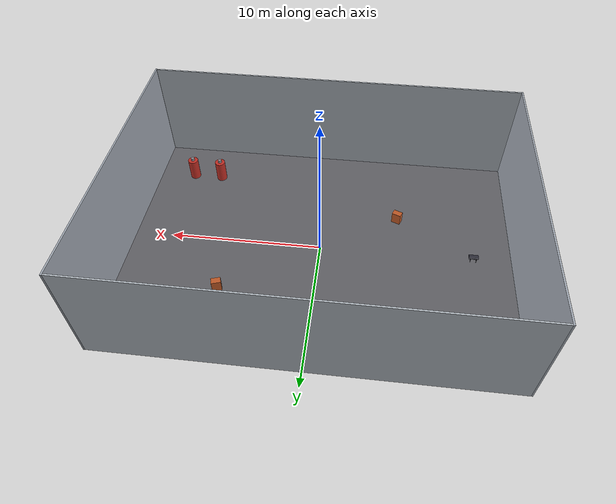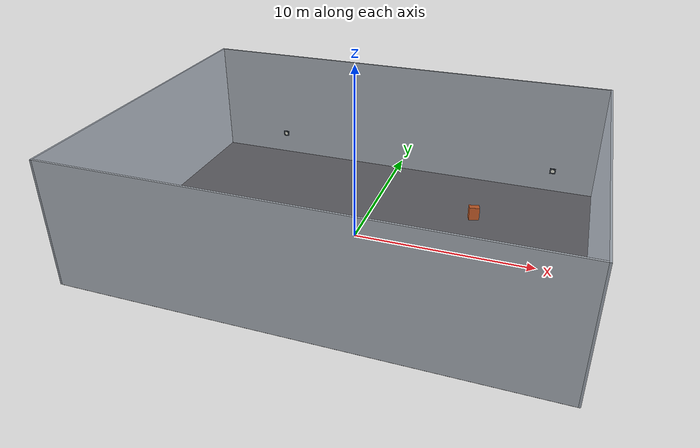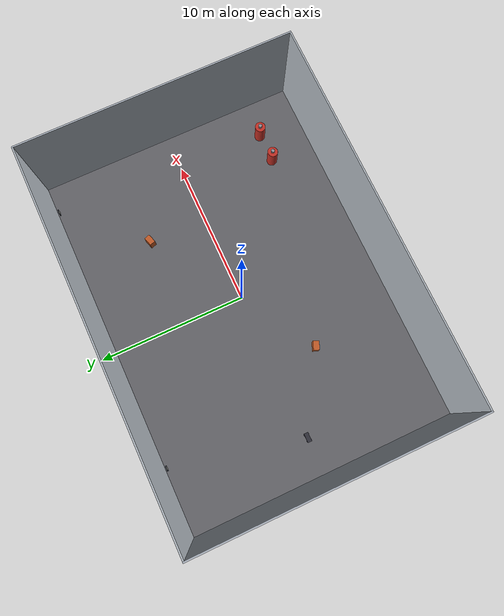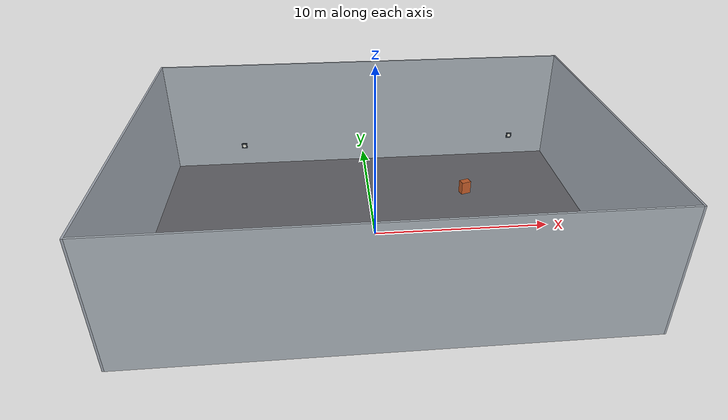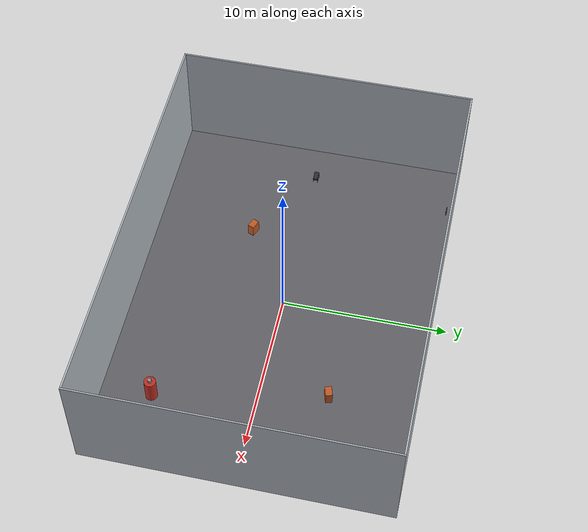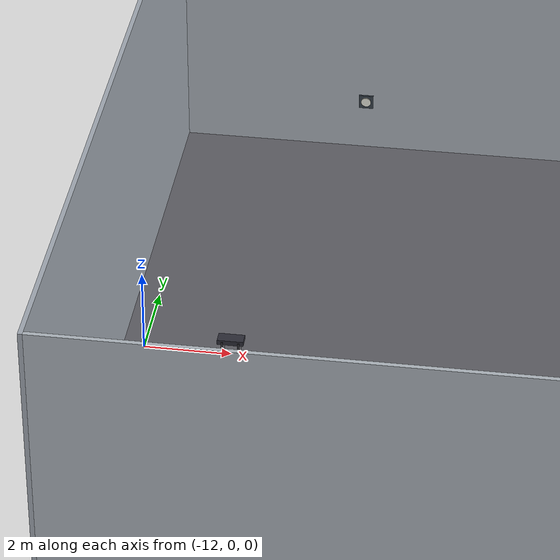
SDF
<?xml version="1.0"?>
<sdf version="1.10">
  <!-- 공장 Virtual Plant: 25 × 18 × 7 m -->
  <world name="factory">
    <physics name="1ms" type="ignored">
      <max_step_size>0.001</max_step_size>
      <real_time_factor>1.0</real_time_factor>
    </physics>
    <plugin filename="gz-sim-physics-system" name="gz::sim::systems::Physics"/>
    <plugin filename="gz-sim-user-commands-system" name="gz::sim::systems::UserCommands"/>
    <plugin filename="gz-sim-scene-broadcaster-system" name="gz::sim::systems::SceneBroadcaster"/>
    <plugin filename="gz-sim-sensors-system" name="gz::sim::systems::Sensors">
      <render_engine>ogre2</render_engine>
    </plugin>
    <plugin filename="gz-sim-imu-system" name="gz::sim::systems::Imu"/>

    <light name="sun" type="directional">
      <cast_shadows>true</cast_shadows>
      <pose>0 0 12 0 0 0</pose>
      <diffuse>0.85 0.85 0.8 1</diffuse>
      <specular>0.2 0.2 0.2 1</specular>
      <direction>-0.4 0.2 -0.9</direction>
    </light>
    <atmosphere type="adiabatic"/>
    <gravity>0 0 -9.8</gravity>

    <model name="floor">
      <static>true</static>
      <pose>0 0 -0.05 0 0 0</pose>
      <link name="link">
        <collision name="collision">
          <geometry><box><size>25 18 0.1</size></box></geometry>
        </collision>
        <visual name="visual">
          <geometry><box><size>25 18 0.1</size></box></geometry>
          <material>
            <ambient>0.28 0.28 0.3 1</ambient>
            <diffuse>0.38 0.38 0.4 1</diffuse>
          </material>
        </visual>
      </link>
    </model>

    <model name="wall_north">
      <static>true</static>
      <pose>0 9.05 3.5 0 0 0</pose>
      <link name="link">
        <collision name="collision">
          <geometry><box><size>25 0.1 7</size></box></geometry>
        </collision>
        <visual name="visual">
          <geometry><box><size>25 0.1 7</size></box></geometry>
          <material>
            <ambient>0.55 0.58 0.62 1</ambient>
            <diffuse>0.7 0.73 0.76 1</diffuse>
          </material>
        </visual>
      </link>
    </model>
    <model name="wall_south">
      <static>true</static>
      <pose>0 -9.05 3.5 0 0 0</pose>
      <link name="link">
        <collision name="collision">
          <geometry><box><size>25 0.1 7</size></box></geometry>
        </collision>
        <visual name="visual">
          <geometry><box><size>25 0.1 7</size></box></geometry>
          <material>
            <ambient>0.55 0.58 0.62 1</ambient>
            <diffuse>0.7 0.73 0.76 1</diffuse>
          </material>
        </visual>
      </link>
    </model>
    <model name="wall_west">
      <static>true</static>
      <pose>-12.55 0 3.5 0 0 0</pose>
      <link name="link">
        <collision name="collision">
          <geometry><box><size>0.1 18.2 7</size></box></geometry>
        </collision>
        <visual name="visual">
          <geometry><box><size>0.1 18.2 7</size></box></geometry>
          <material>
            <ambient>0.5 0.53 0.58 1</ambient>
            <diffuse>0.65 0.68 0.72 1</diffuse>
          </material>
        </visual>
      </link>
    </model>
    <model name="wall_east">
      <static>true</static>
      <pose>12.55 0 3.5 0 0 0</pose>
      <link name="link">
        <collision name="collision">
          <geometry><box><size>0.1 18.2 7</size></box></geometry>
        </collision>
        <visual name="visual">
          <geometry><box><size>0.1 18.2 7</size></box></geometry>
          <material>
            <ambient>0.5 0.53 0.58 1</ambient>
            <diffuse>0.65 0.68 0.72 1</diffuse>
          </material>
        </visual>
      </link>
    </model>

    <include>
      <uri>model://obstacle</uri>
      <name>rack_a</name>
      <pose>6 4 0.4 0 0 0.3</pose>
    </include>
    <include>
      <uri>model://obstacle</uri>
      <name>rack_b</name>
      <pose>-5 -3 0.4 0 0 -0.4</pose>
    </include>
    <include>
      <uri>model://gauge</uri>
      <name>gauge_line1</name>
      <pose>10 8.7 1.5 0 0 -1.5708</pose>
    </include>
    <include>
      <uri>model://gauge</uri>
      <name>gauge_line2</name>
      <pose>-8 8.7 1.5 0 0 -1.5708</pose>
    </include>
    <include>
      <uri>model://gas_tank</uri>
      <name>gas_tank_1</name>
      <pose>8 -6 0.75 0 0 0</pose>
    </include>
    <include>
      <uri>model://gas_tank</uri>
      <name>gas_tank_2</name>
      <pose>10 -6 0.75 0 0 0</pose>
    </include>

    <include>
      <uri>model://go2</uri>
      <name>go2</name>
      <pose>-10 0 0.4 0 0 0</pose>
    </include>
  </world>
</sdf>

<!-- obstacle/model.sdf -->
<sdf version="1.10">
  <model name="obstacle">
    <static>true</static>
    <link name="link">
      <collision name="collision">
        <geometry><box><size>0.6 0.4 0.8</size></box></geometry>
      </collision>
      <visual name="visual">
        <geometry><box><size>0.6 0.4 0.8</size></box></geometry>
        <material>
          <ambient>0.55 0.25 0.12 1</ambient>
          <diffuse>0.75 0.35 0.15 1</diffuse>
        </material>
      </visual>
    </link>
  </model>
</sdf>

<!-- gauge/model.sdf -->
<sdf version="1.10">
  <model name="gauge">
    <static>true</static>
    <link name="panel">
      <collision name="collision">
        <geometry><box><size>0.04 0.35 0.35</size></box></geometry>
      </collision>
      <visual name="visual">
        <geometry><box><size>0.04 0.35 0.35</size></box></geometry>
        <material>
          <ambient>0.15 0.18 0.2 1</ambient>
          <diffuse>0.22 0.26 0.3 1</diffuse>
        </material>
      </visual>
    </link>
    <link name="dial">
      <pose>0.03 0 0 0 1.5708 0</pose>
      <visual name="visual">
        <geometry><cylinder><radius>0.12</radius><length>0.02</length></cylinder></geometry>
        <material>
          <ambient>0.85 0.85 0.8 1</ambient>
          <diffuse>0.95 0.95 0.9 1</diffuse>
        </material>
      </visual>
    </link>
  </model>
</sdf>

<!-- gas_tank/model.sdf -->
<sdf version="1.10">
  <model name="gas_tank">
    <static>true</static>
    <link name="tank">
      <collision name="collision">
        <geometry><cylinder><radius>0.35</radius><length>1.5</length></cylinder></geometry>
      </collision>
      <visual name="visual">
        <geometry><cylinder><radius>0.35</radius><length>1.5</length></cylinder></geometry>
        <material>
          <ambient>0.55 0.12 0.1 1</ambient>
          <diffuse>0.75 0.18 0.14 1</diffuse>
        </material>
      </visual>
    </link>
    <link name="cap">
      <pose>0 0 0.85 0 0 0</pose>
      <visual name="visual">
        <geometry><cylinder><radius>0.12</radius><length>0.2</length></cylinder></geometry>
        <material>
          <ambient>0.4 0.4 0.42 1</ambient>
          <diffuse>0.55 0.55 0.58 1</diffuse>
        </material>
      </visual>
    </link>
  </model>
</sdf>

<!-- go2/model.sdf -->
<sdf version="1.10">
  <model name="go2">
    <pose>0 0 0.4 0 0 0</pose>
    <self_collide>false</self_collide>

    <link name="base_link">
      <inertial>
        <mass>6.0</mass>
        <inertia>
          <ixx>0.07</ixx><iyy>0.12</iyy><izz>0.15</izz>
          <ixy>0</ixy><ixz>0</ixz><iyz>0</iyz>
        </inertia>
      </inertial>
      <collision name="collision">
        <geometry><box><size>0.60 0.28 0.12</size></box></geometry>
      </collision>
      <visual name="visual">
        <geometry><box><size>0.60 0.28 0.12</size></box></geometry>
        <material>
          <ambient>0.12 0.12 0.14 1</ambient>
          <diffuse>0.18 0.18 0.22 1</diffuse>
        </material>
      </visual>
      <sensor name="imu_sensor" type="imu">
        <always_on>true</always_on>
        <update_rate>200</update_rate>
        <imu>
          <angular_velocity>
            <x><noise type="gaussian"><mean>0</mean><stddev>0.001</stddev></noise></x>
            <y><noise type="gaussian"><mean>0</mean><stddev>0.001</stddev></noise></y>
            <z><noise type="gaussian"><mean>0</mean><stddev>0.001</stddev></noise></z>
          </angular_velocity>
        </imu>
        <topic>imu</topic>
      </sensor>
      <sensor name="gpu_lidar" type="gpu_lidar">
        <pose>0.15 0 0.08 0 0 0</pose>
        <always_on>true</always_on>
        <update_rate>10</update_rate>
        <topic>lidar</topic>
        <lidar>
          <scan>
            <horizontal>
              <samples>360</samples>
              <resolution>1</resolution>
              <min_angle>-3.14159</min_angle>
              <max_angle>3.14159</max_angle>
            </horizontal>
            <vertical>
              <samples>16</samples>
              <resolution>1</resolution>
              <min_angle>-0.26</min_angle>
              <max_angle>0.26</max_angle>
            </vertical>
          </scan>
          <range>
            <min>0.1</min>
            <max>30</max>
            <resolution>0.01</resolution>
          </range>
        </lidar>
      </sensor>
      <sensor name="camera" type="camera">
        <pose>0.28 0 0.05 0 0 0</pose>
        <always_on>true</always_on>
        <update_rate>15</update_rate>
        <topic>camera</topic>
        <camera>
          <horizontal_fov>1.396</horizontal_fov>
          <image>
            <width>640</width>
            <height>480</height>
          </image>
          <clip>
            <near>0.05</near>
            <far>20</far>
          </clip>
        </camera>
      </sensor>
      <sensor name="thermal" type="camera">
        <pose>0.28 0 0.02 0 0 0</pose>
        <always_on>true</always_on>
        <update_rate>10</update_rate>
        <topic>thermal</topic>
        <camera>
          <horizontal_fov>1.0</horizontal_fov>
          <image>
            <width>320</width>
            <height>240</height>
            <format>L8</format>
          </image>
          <clip>
            <near>0.05</near>
            <far>15</far>
          </clip>
        </camera>
      </sensor>
    </link>

    <!-- 다리 4개 × hip / thigh / calf (시각·충돌만, 제어는 모듈1에서) -->
    <link name="FL_hip"><pose>0.19 0.10 0 0 0 0</pose>
      <inertial><mass>0.6</mass><inertia><ixx>0.001</ixx><iyy>0.001</iyy><izz>0.001</izz><ixy>0</ixy><ixz>0</ixz><iyz>0</iyz></inertia></inertial>
      <visual name="v"><geometry><box><size>0.06 0.06 0.06</size></box></geometry>
        <material><diffuse>0.9 0.55 0.1 1</diffuse></material></visual>
    </link>
    <link name="FL_thigh"><pose>0.19 0.14 -0.08 0 0 0</pose>
      <inertial><mass>1.0</mass><inertia><ixx>0.004</ixx><iyy>0.004</iyy><izz>0.001</izz><ixy>0</ixy><ixz>0</ixz><iyz>0</iyz></inertia></inertial>
      <collision name="c"><geometry><box><size>0.04 0.04 0.20</size></box></geometry></collision>
      <visual name="v"><geometry><box><size>0.04 0.04 0.20</size></box></geometry>
        <material><diffuse>0.2 0.2 0.22 1</diffuse></material></visual>
    </link>
    <link name="FL_calf"><pose>0.19 0.14 -0.26 0 0 0</pose>
      <inertial><mass>0.2</mass><inertia><ixx>0.003</ixx><iyy>0.003</iyy><izz>0.0004</izz><ixy>0</ixy><ixz>0</ixz><iyz>0</iyz></inertia></inertial>
      <collision name="c"><geometry><box><size>0.03 0.03 0.20</size></box></geometry></collision>
      <visual name="v"><geometry><box><size>0.03 0.03 0.20</size></box></geometry>
        <material><diffuse>0.75 0.75 0.78 1</diffuse></material></visual>
    </link>

    <link name="FR_hip"><pose>0.19 -0.10 0 0 0 0</pose>
      <inertial><mass>0.6</mass><inertia><ixx>0.001</ixx><iyy>0.001</iyy><izz>0.001</izz><ixy>0</ixy><ixz>0</ixz><iyz>0</iyz></inertia></inertial>
      <visual name="v"><geometry><box><size>0.06 0.06 0.06</size></box></geometry>
        <material><diffuse>0.9 0.55 0.1 1</diffuse></material></visual>
    </link>
    <link name="FR_thigh"><pose>0.19 -0.14 -0.08 0 0 0</pose>
      <inertial><mass>1.0</mass><inertia><ixx>0.004</ixx><iyy>0.004</iyy><izz>0.001</izz><ixy>0</ixy><ixz>0</ixz><iyz>0</iyz></inertia></inertial>
      <collision name="c"><geometry><box><size>0.04 0.04 0.20</size></box></geometry></collision>
      <visual name="v"><geometry><box><size>0.04 0.04 0.20</size></box></geometry>
        <material><diffuse>0.2 0.2 0.22 1</diffuse></material></visual>
    </link>
    <link name="FR_calf"><pose>0.19 -0.14 -0.26 0 0 0</pose>
      <inertial><mass>0.2</mass><inertia><ixx>0.003</ixx><iyy>0.003</iyy><izz>0.0004</izz><ixy>0</ixy><ixz>0</ixz><iyz>0</iyz></inertia></inertial>
      <collision name="c"><geometry><box><size>0.03 0.03 0.20</size></box></geometry></collision>
      <visual name="v"><geometry><box><size>0.03 0.03 0.20</size></box></geometry>
        <material><diffuse>0.75 0.75 0.78 1</diffuse></material></visual>
    </link>

    <link name="RL_hip"><pose>-0.19 0.10 0 0 0 0</pose>
      <inertial><mass>0.6</mass><inertia><ixx>0.001</ixx><iyy>0.001</iyy><izz>0.001</izz><ixy>0</ixy><ixz>0</ixz><iyz>0</iyz></inertia></inertial>
      <visual name="v"><geometry><box><size>0.06 0.06 0.06</size></box></geometry>
        <material><diffuse>0.9 0.55 0.1 1</diffuse></material></visual>
    </link>
    <link name="RL_thigh"><pose>-0.19 0.14 -0.08 0 0 0</pose>
      <inertial><mass>1.0</mass><inertia><ixx>0.004</ixx><iyy>0.004</iyy><izz>0.001</izz><ixy>0</ixy><ixz>0</ixz><iyz>0</iyz></inertia></inertial>
      <collision name="c"><geometry><box><size>0.04 0.04 0.20</size></box></geometry></collision>
      <visual name="v"><geometry><box><size>0.04 0.04 0.20</size></box></geometry>
        <material><diffuse>0.2 0.2 0.22 1</diffuse></material></visual>
    </link>
    <link name="RL_calf"><pose>-0.19 0.14 -0.26 0 0 0</pose>
      <inertial><mass>0.2</mass><inertia><ixx>0.003</ixx><iyy>0.003</iyy><izz>0.0004</izz><ixy>0</ixy><ixz>0</ixz><iyz>0</iyz></inertia></inertial>
      <collision name="c"><geometry><box><size>0.03 0.03 0.20</size></box></geometry></collision>
      <visual name="v"><geometry><box><size>0.03 0.03 0.20</size></box></geometry>
        <material><diffuse>0.75 0.75 0.78 1</diffuse></material></visual>
    </link>

    <link name="RR_hip"><pose>-0.19 -0.10 0 0 0 0</pose>
      <inertial><mass>0.6</mass><inertia><ixx>0.001</ixx><iyy>0.001</iyy><izz>0.001</izz><ixy>0</ixy><ixz>0</ixz><iyz>0</iyz></inertia></inertial>
      <visual name="v"><geometry><box><size>0.06 0.06 0.06</size></box></geometry>
        <material><diffuse>0.9 0.55 0.1 1</diffuse></material></visual>
    </link>
    <link name="RR_thigh"><pose>-0.19 -0.14 -0.08 0 0 0</pose>
      <inertial><mass>1.0</mass><inertia><ixx>0.004</ixx><iyy>0.004</iyy><izz>0.001</izz><ixy>0</ixy><ixz>0</ixz><iyz>0</iyz></inertia></inertial>
      <collision name="c"><geometry><box><size>0.04 0.04 0.20</size></box></geometry></collision>
      <visual name="v"><geometry><box><size>0.04 0.04 0.20</size></box></geometry>
        <material><diffuse>0.2 0.2 0.22 1</diffuse></material></visual>
    </link>
    <link name="RR_calf"><pose>-0.19 -0.14 -0.26 0 0 0</pose>
      <inertial><mass>0.2</mass><inertia><ixx>0.003</ixx><iyy>0.003</iyy><izz>0.0004</izz><ixy>0</ixy><ixz>0</ixz><iyz>0</iyz></inertia></inertial>
      <collision name="c"><geometry><box><size>0.03 0.03 0.20</size></box></geometry></collision>
      <visual name="v"><geometry><box><size>0.03 0.03 0.20</size></box></geometry>
        <material><diffuse>0.75 0.75 0.78 1</diffuse></material></visual>
    </link>

    <joint name="FL_hip_joint" type="revolute">
      <parent>base_link</parent><child>FL_hip</child>
      <axis><xyz>1 0 0</xyz><limit><lower>-1.05</lower><upper>1.05</upper></limit></axis>
    </joint>
    <joint name="FL_thigh_joint" type="revolute">
      <parent>FL_hip</parent><child>FL_thigh</child>
      <axis><xyz>0 1 0</xyz><limit><lower>-0.66</lower><upper>2.97</upper></limit></axis>
    </joint>
    <joint name="FL_calf_joint" type="revolute">
      <parent>FL_thigh</parent><child>FL_calf</child>
      <axis><xyz>0 1 0</xyz><limit><lower>-2.72</lower><upper>-0.84</upper></limit></axis>
    </joint>
    <joint name="FR_hip_joint" type="revolute">
      <parent>base_link</parent><child>FR_hip</child>
      <axis><xyz>1 0 0</xyz><limit><lower>-1.05</lower><upper>1.05</upper></limit></axis>
    </joint>
    <joint name="FR_thigh_joint" type="revolute">
      <parent>FR_hip</parent><child>FR_thigh</child>
      <axis><xyz>0 1 0</xyz><limit><lower>-0.66</lower><upper>2.97</upper></limit></axis>
    </joint>
    <joint name="FR_calf_joint" type="revolute">
      <parent>FR_thigh</parent><child>FR_calf</child>
      <axis><xyz>0 1 0</xyz><limit><lower>-2.72</lower><upper>-0.84</upper></limit></axis>
    </joint>
    <joint name="RL_hip_joint" type="revolute">
      <parent>base_link</parent><child>RL_hip</child>
      <axis><xyz>1 0 0</xyz><limit><lower>-1.05</lower><upper>1.05</upper></limit></axis>
    </joint>
    <joint name="RL_thigh_joint" type="revolute">
      <parent>RL_hip</parent><child>RL_thigh</child>
      <axis><xyz>0 1 0</xyz><limit><lower>-0.66</lower><upper>2.97</upper></limit></axis>
    </joint>
    <joint name="RL_calf_joint" type="revolute">
      <parent>RL_thigh</parent><child>RL_calf</child>
      <axis><xyz>0 1 0</xyz><limit><lower>-2.72</lower><upper>-0.84</upper></limit></axis>
    </joint>
    <joint name="RR_hip_joint" type="revolute">
      <parent>base_link</parent><child>RR_hip</child>
      <axis><xyz>1 0 0</xyz><limit><lower>-1.05</lower><upper>1.05</upper></limit></axis>
    </joint>
    <joint name="RR_thigh_joint" type="revolute">
      <parent>RR_hip</parent><child>RR_thigh</child>
      <axis><xyz>0 1 0</xyz><limit><lower>-0.66</lower><upper>2.97</upper></limit></axis>
    </joint>
    <joint name="RR_calf_joint" type="revolute">
      <parent>RR_thigh</parent><child>RR_calf</child>
      <axis><xyz>0 1 0</xyz><limit><lower>-2.72</lower><upper>-0.84</upper></limit></axis>
    </joint>
  </model>
</sdf>
